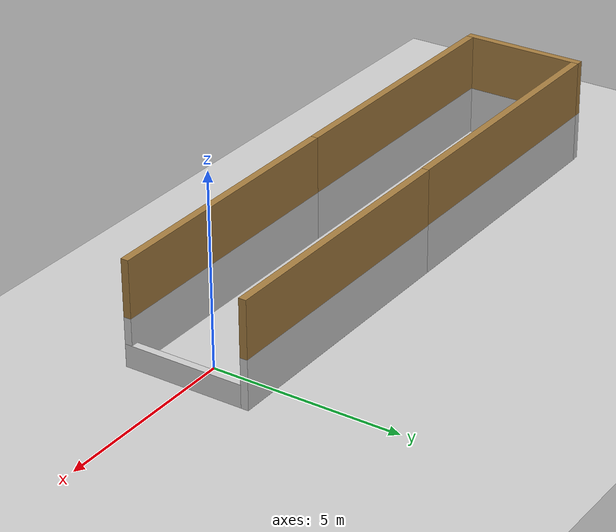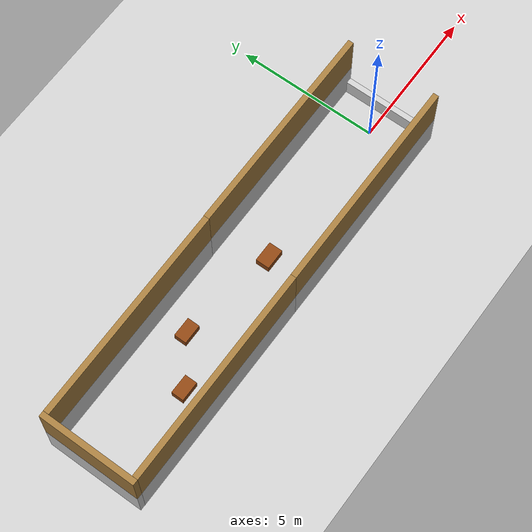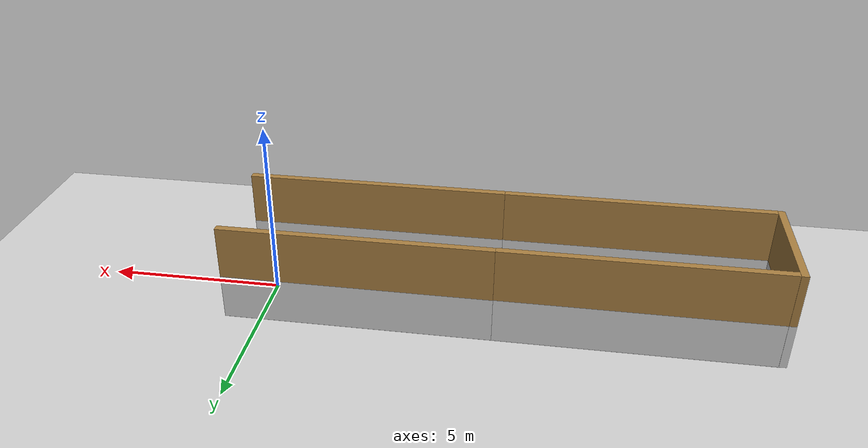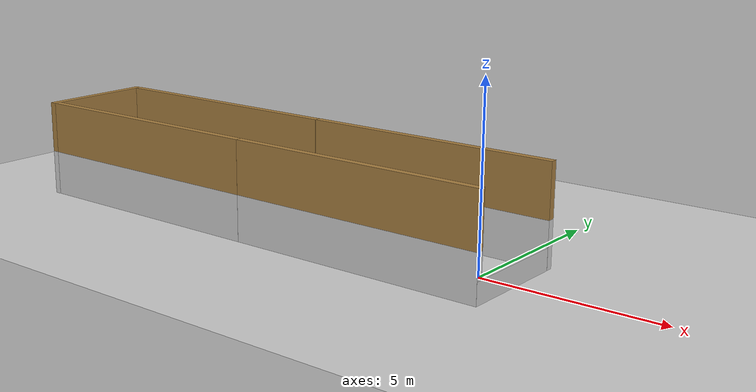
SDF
<sdf version="1.10">
 <world name="dc_t4">
  <physics type="ode"><max_step_size>0.003</max_step_size><real_time_factor>1.0</real_time_factor></physics>
  <plugin name="gz::sim::systems::Physics" filename="gz-sim-physics-system"/>
  <plugin name="gz::sim::systems::UserCommands" filename="gz-sim-user-commands-system"/>
  <plugin name="gz::sim::systems::SceneBroadcaster" filename="gz-sim-scene-broadcaster-system"/>
  <plugin name="gz::sim::systems::Contact" filename="gz-sim-contact-system"/>
  <scene>
   <ambient>1 1 1 1</ambient>
   <background>0.3 0.7 0.9 1</background>
   <shadows>0</shadows>
   <grid>false</grid>
  </scene>
  <model name="ground_plane">
   <static>true</static>
   <link name="link">
    <collision name="collision">
     <geometry><plane><normal>0 0 1</normal><size>100 100</size></plane></geometry>
    </collision>
    <visual name="visual">
     <geometry><plane><normal>0 0 1</normal><size>100 100</size></plane></geometry>
     <material>
      <ambient>0.800000012 0.800000012 0.800000012 1</ambient>
      <diffuse>0.800000012 0.800000012 0.800000012 1</diffuse>
      <specular>0.800000012 0.800000012 0.800000012 1</specular>
     </material>
    </visual>
    <inertial>
     <mass>1</mass>
     <inertia><ixx>1</ixx><ixy>0</ixy><ixz>0</ixz><iyy>1</iyy><iyz>0</iyz><izz>1</izz></inertia>
    </inertial>
   </link>
   <pose>0 0 -0.10000000000000001 0 0 0</pose>
  </model>
  <model name="floor">
   <static>true</static>
   <link name="link">
    <collision name="collision">
     <geometry><plane><normal>0 0 1</normal><size>100 100</size></plane></geometry>
    </collision>
    <visual name="visual">
     <geometry><plane><normal>0 0 1</normal><size>15 3.3999999999999999</size></plane></geometry>
     <material>
      <ambient>0.800000012 0.800000012 0.800000012 1</ambient>
      <diffuse>0.800000012 0.800000012 0.800000012 1</diffuse>
      <pbr>
       <metal>
        <albedo_map>models/floor/materials/textures/floor.png</albedo_map>
        <roughness>0.9</roughness>
        <metalness>0.0</metalness>
       </metal>
      </pbr>
     </material>
    </visual>
    <inertial>
     <mass>1</mass>
     <inertia><ixx>1</ixx><ixy>0</ixy><ixz>0</ixz><iyy>1</iyy><iyz>0</iyz><izz>1</izz></inertia>
    </inertial>
   </link>
   <pose>-6.5026798248291016 0 0 0 0 0</pose>
  </model>
  <model name="grey_wall">
   <static>true</static>
   <link name="link">
    <collision name="collision">
     <geometry><box><size>7.5 0.20000000000000001 2.7999999999999998</size></box></geometry>
    </collision>
    <visual name="visual_baixo">
     <pose>0 0 0.65000000000000002 0 0 0</pose>
     <geometry><box><size>7.5 0.20000000000000001 1.3</size></box></geometry>
     <material>
      <ambient>0.800000012 0.800000012 0.800000012 1</ambient>
      <diffuse>0.800000012 0.800000012 0.800000012 1</diffuse>
      <pbr>
       <metal>
        <albedo_map>models/wall/materials/textures/brick_wall.png</albedo_map>
        <roughness>0.9</roughness>
        <metalness>0.0</metalness>
       </metal>
      </pbr>
     </material>
    </visual>
    <visual name="visual_cima">
     <pose>0 0 2.0499999999999998 0 0 0</pose>
     <geometry><box><size>7.5 0.20000000000000001 1.5</size></box></geometry>
     <material>
      <ambient>0.651000023 0.49000001 0.246999994 1</ambient>
      <diffuse>0.651000023 0.49000001 0.246999994 1</diffuse>
      <pbr><metal><roughness>0.8</roughness><metalness>0.0</metalness></metal></pbr>
     </material>
    </visual>
    <inertial>
     <mass>1</mass>
     <inertia><ixx>1</ixx><ixy>0</ixy><ixz>0</ixz><iyy>1</iyy><iyz>0</iyz><izz>1</izz></inertia>
    </inertial>
   </link>
   <pose>-10.220000000000001 -1.6100000000000001 0 0 0 0</pose>
  </model>
  <model name="grey_wall_0">
   <static>true</static>
   <link name="link">
    <collision name="collision">
     <geometry><box><size>7.5 0.20000000000000001 2.7999999999999998</size></box></geometry>
    </collision>
    <visual name="visual_baixo">
     <pose>0 0 0.65000000000000002 0 0 0</pose>
     <geometry><box><size>7.5 0.20000000000000001 1.3</size></box></geometry>
     <material>
      <ambient>0.800000012 0.800000012 0.800000012 1</ambient>
      <diffuse>0.800000012 0.800000012 0.800000012 1</diffuse>
      <pbr>
       <metal>
        <albedo_map>models/wall/materials/textures/brick_wall.png</albedo_map>
        <roughness>0.9</roughness>
        <metalness>0.0</metalness>
       </metal>
      </pbr>
     </material>
    </visual>
    <visual name="visual_cima">
     <pose>0 0 2.0499999999999998 0 0 0</pose>
     <geometry><box><size>7.5 0.20000000000000001 1.5</size></box></geometry>
     <material>
      <ambient>0.651000023 0.49000001 0.246999994 1</ambient>
      <diffuse>0.651000023 0.49000001 0.246999994 1</diffuse>
      <pbr><metal><roughness>0.8</roughness><metalness>0.0</metalness></metal></pbr>
     </material>
    </visual>
    <inertial>
     <mass>1</mass>
     <inertia><ixx>1</ixx><ixy>0</ixy><ixz>0</ixz><iyy>1</iyy><iyz>0</iyz><izz>1</izz></inertia>
    </inertial>
   </link>
   <pose>-2.7195999622344971 -1.6090199947357178 0 0 0 0</pose>
  </model>
  <model name="grey_wall_1">
   <static>true</static>
   <link name="link">
    <collision name="collision">
     <geometry><box><size>3.3999999999999999 0.20000000000000001 2.2999999999999998</size></box></geometry>
    </collision>
    <visual name="visual_baixo">
     <pose>0 0 1.6499999999999999 0 0 0</pose>
     <geometry><box><size>3.3999999999999999 0.20000000000000001 0.59999999999999998</size></box></geometry>
     <material>
      <ambient>0.800000012 0.800000012 0.800000012 1</ambient>
      <diffuse>0.800000012 0.800000012 0.800000012 1</diffuse>
      <pbr>
       <metal>
        <albedo_map>models/wall/materials/textures/brick_wall.png</albedo_map>
        <roughness>0.9</roughness>
        <metalness>0.0</metalness>
       </metal>
      </pbr>
     </material>
    </visual>
    <inertial>
     <mass>1</mass>
     <inertia><ixx>1</ixx><ixy>0</ixy><ixz>0</ixz><iyy>1</iyy><iyz>0</iyz><izz>1</izz></inertia>
    </inertial>
   </link>
   <pose>0.9298279881477356 -0.0082240896299481392 -1.350383996963501 0 0 -1.5700000042340219</pose>
  </model>
  <model name="grey_wall_2">
   <static>true</static>
   <link name="link">
    <collision name="collision">
     <geometry><box><size>7.5 0.20000000000000001 2.7999999999999998</size></box></geometry>
    </collision>
    <visual name="visual_baixo">
     <pose>0 0 0.65000000000000002 0 0 0</pose>
     <geometry><box><size>7.5 0.20000000000000001 1.3</size></box></geometry>
     <material>
      <ambient>0.800000012 0.800000012 0.800000012 1</ambient>
      <diffuse>0.800000012 0.800000012 0.800000012 1</diffuse>
      <pbr>
       <metal>
        <albedo_map>models/wall/materials/textures/brick_wall.png</albedo_map>
        <roughness>0.9</roughness>
        <metalness>0.0</metalness>
       </metal>
      </pbr>
     </material>
    </visual>
    <visual name="visual_cima">
     <pose>0 0 2.0499999999999998 0 0 0</pose>
     <geometry><box><size>7.5 0.20000000000000001 1.5</size></box></geometry>
     <material>
      <ambient>0.651000023 0.49000001 0.246999994 1</ambient>
      <diffuse>0.651000023 0.49000001 0.246999994 1</diffuse>
      <pbr><metal><roughness>0.8</roughness><metalness>0.0</metalness></metal></pbr>
     </material>
    </visual>
    <inertial>
     <mass>1</mass>
     <inertia><ixx>1</ixx><ixy>0</ixy><ixz>0</ixz><iyy>1</iyy><iyz>0</iyz><izz>1</izz></inertia>
    </inertial>
   </link>
   <pose>-2.7200000286102295 1.5986303091049194 0 0 0 0</pose>
  </model>
  <model name="grey_wall_3">
   <static>true</static>
   <link name="link">
    <collision name="collision">
     <geometry><box><size>7.5 0.20000000000000001 2.7999999999999998</size></box></geometry>
    </collision>
    <visual name="visual_baixo">
     <pose>0 0 0.65000000000000002 0 0 0</pose>
     <geometry><box><size>7.5 0.20000000000000001 1.3</size></box></geometry>
     <material>
      <ambient>0.800000012 0.800000012 0.800000012 1</ambient>
      <diffuse>0.800000012 0.800000012 0.800000012 1</diffuse>
      <pbr>
       <metal>
        <albedo_map>models/wall/materials/textures/brick_wall.png</albedo_map>
        <roughness>0.9</roughness>
        <metalness>0.0</metalness>
       </metal>
      </pbr>
     </material>
    </visual>
    <visual name="visual_cima">
     <pose>0 0 2.0499999999999998 0 0 0</pose>
     <geometry><box><size>7.5 0.20000000000000001 1.5</size></box></geometry>
     <material>
      <ambient>0.651000023 0.49000001 0.246999994 1</ambient>
      <diffuse>0.651000023 0.49000001 0.246999994 1</diffuse>
      <pbr><metal><roughness>0.8</roughness><metalness>0.0</metalness></metal></pbr>
     </material>
    </visual>
    <inertial>
     <mass>1</mass>
     <inertia><ixx>1</ixx><ixy>0</ixy><ixz>0</ixz><iyy>1</iyy><iyz>0</iyz><izz>1</izz></inertia>
    </inertial>
   </link>
   <pose>-10.220000267028809 1.586809515953064 0 0 0 0</pose>
  </model>
  <model name="grey_wall_4">
   <static>true</static>
   <link name="link">
    <collision name="collision">
     <geometry><box><size>3.3999999999999999 0.20000000000000001 2.7999999999999998</size></box></geometry>
    </collision>
    <visual name="visual_baixo">
     <pose>0 0 0.65000000000000002 0 0 0</pose>
     <geometry><box><size>3.3900000000000001 0.20000000000000001 1.3</size></box></geometry>
     <material>
      <ambient>0.800000012 0.800000012 0.800000012 1</ambient>
      <diffuse>0.800000012 0.800000012 0.800000012 1</diffuse>
      <pbr>
       <metal>
        <albedo_map>models/wall/materials/textures/brick_wall.png</albedo_map>
        <roughness>0.9</roughness>
        <metalness>0.0</metalness>
       </metal>
      </pbr>
     </material>
    </visual>
    <visual name="visual_cima">
     <pose>0 0 2.0499999999999998 0 0 0</pose>
     <geometry><box><size>3.3900000000000001 0.20000000000000001 1.5</size></box></geometry>
     <material>
      <ambient>0.651000023 0.49000001 0.246999994 1</ambient>
      <diffuse>0.651000023 0.49000001 0.246999994 1</diffuse>
      <pbr><metal><roughness>0.8</roughness><metalness>0.0</metalness></metal></pbr>
     </material>
    </visual>
    <inertial>
     <mass>1</mass>
     <inertia><ixx>1</ixx><ixy>0</ixy><ixz>0</ixz><iyy>1</iyy><iyz>0</iyz><izz>1</izz></inertia>
    </inertial>
   </link>
   <pose>-14.072199821472168 -0.011488200165331364 -0.0047772806137800217 0 0 -1.5700000042340219</pose>
  </model>
  <light name="pointlight" type="point">
   <pose>-1 0 2.7799999999999998 0 0 0</pose>
   <visualize>false</visualize>
   <cast_shadows>false</cast_shadows>
   <intensity>1</intensity>
   <direction>0 0 -1</direction>
   <diffuse>0.5 0.5 0.5 1</diffuse>
   <specular>0.5 0.5 0.5 1</specular>
   <attenuation>
    <range>4</range>
    <linear>0.5</linear>
    <constant>0.20000000000000001</constant>
    <quadratic>0.01</quadratic>
   </attenuation>
   <spot><inner_angle>0</inner_angle><outer_angle>0</outer_angle><falloff>0</falloff></spot>
  </light>
  <light name="pointlight_0" type="point">
   <pose>-5 0 2.7799999999999998 0 0 0</pose>
   <visualize>false</visualize>
   <cast_shadows>false</cast_shadows>
   <intensity>1</intensity>
   <direction>0 0 -1</direction>
   <diffuse>0.5 0.5 0.5 1</diffuse>
   <specular>0.5 0.5 0.5 1</specular>
   <attenuation>
    <range>4</range>
    <linear>0.5</linear>
    <constant>0.20000000000000001</constant>
    <quadratic>0.01</quadratic>
   </attenuation>
   <spot><inner_angle>0</inner_angle><outer_angle>0</outer_angle><falloff>0</falloff></spot>
  </light>
  <light name="pointlight_1" type="point">
   <pose>-9 0 2.7799999999999998 0 0 0</pose>
   <visualize>false</visualize>
   <cast_shadows>false</cast_shadows>
   <intensity>1</intensity>
   <direction>0 0 -1</direction>
   <diffuse>0.5 0.5 0.5 1</diffuse>
   <specular>0.5 0.5 0.5 1</specular>
   <attenuation>
    <range>4</range>
    <linear>0.5</linear>
    <constant>0.20000000000000001</constant>
    <quadratic>0.01</quadratic>
   </attenuation>
   <spot><inner_angle>0</inner_angle><outer_angle>0</outer_angle><falloff>0</falloff></spot>
  </light>
  <light name="pointlight_2" type="point">
   <pose>-13 0 2.7799999999999998 0 0 0</pose>
   <visualize>false</visualize>
   <cast_shadows>false</cast_shadows>
   <intensity>1</intensity>
   <direction>0 0 -1</direction>
   <diffuse>0.5 0.5 0.5 1</diffuse>
   <specular>0.5 0.5 0.5 1</specular>
   <attenuation>
    <range>4</range>
    <linear>0.5</linear>
    <constant>0.20000000000000001</constant>
    <quadratic>0.01</quadratic>
   </attenuation>
   <spot><inner_angle>0</inner_angle><outer_angle>0</outer_angle><falloff>0</falloff></spot>
  </light>
  <model name="obstacle_1">
   <static>true</static>
   <link name="link">
    <collision name="collision"><geometry><box><size>0.685 0.435 0.30</size></box></geometry></collision>
    <visual name="visual">
     <geometry><box><size>0.685 0.435 0.30</size></box></geometry>
     <material><ambient>0.55 0.27 0.07 1</ambient><diffuse>0.55 0.27 0.07 1</diffuse></material>
    </visual>
    <inertial>
     <mass>1</mass>
     <inertia><ixx>1</ixx><ixy>0</ixy><ixz>0</ixz><iyy>1</iyy><iyz>0</iyz><izz>1</izz></inertia>
    </inertial>
   </link>
   <pose>-10.5 -0.5 0.15 0 0 0</pose>
  </model>
  <model name="obstacle_2">
   <static>true</static>
   <link name="link">
    <collision name="collision"><geometry><box><size>0.685 0.435 0.30</size></box></geometry></collision>
    <visual name="visual">
     <geometry><box><size>0.685 0.435 0.30</size></box></geometry>
     <material><ambient>0.55 0.27 0.07 1</ambient><diffuse>0.55 0.27 0.07 1</diffuse></material>
    </visual>
    <inertial>
     <mass>1</mass>
     <inertia><ixx>1</ixx><ixy>0</ixy><ixz>0</ixz><iyy>1</iyy><iyz>0</iyz><izz>1</izz></inertia>
    </inertial>
   </link>
   <pose>-9.0 0.55 0.15 0 0 0</pose>
  </model>
  <model name="obstacle_3">
   <static>true</static>
   <link name="link">
    <collision name="collision"><geometry><box><size>0.725 0.485 0.30</size></box></geometry></collision>
    <visual name="visual">
     <geometry><box><size>0.725 0.485 0.30</size></box></geometry>
     <material><ambient>0.55 0.27 0.07 1</ambient><diffuse>0.55 0.27 0.07 1</diffuse></material>
    </visual>
    <inertial>
     <mass>1</mass>
     <inertia><ixx>1</ixx><ixy>0</ixy><ixz>0</ixz><iyy>1</iyy><iyz>0</iyz><izz>1</izz></inertia>
    </inertial>
   </link>
   <pose>-5.5 0 0.15 0 0 0</pose>
  </model>
 </world>
</sdf>
